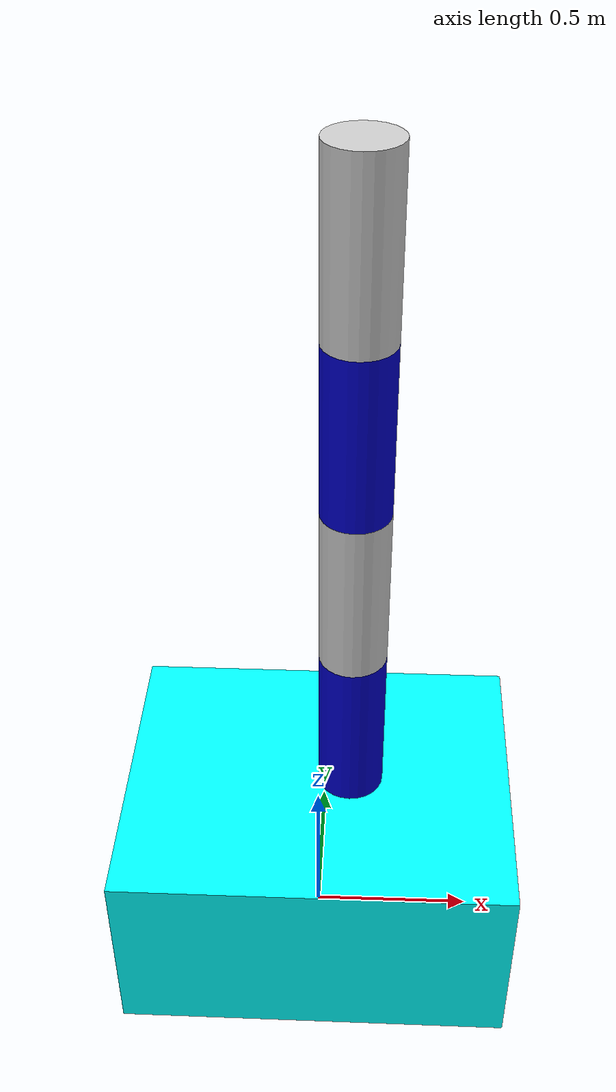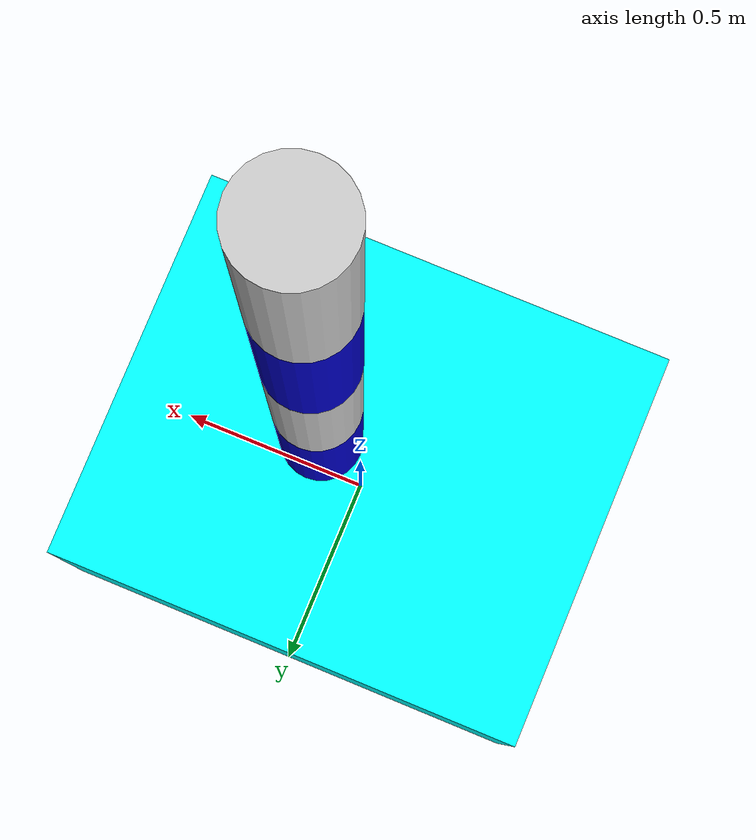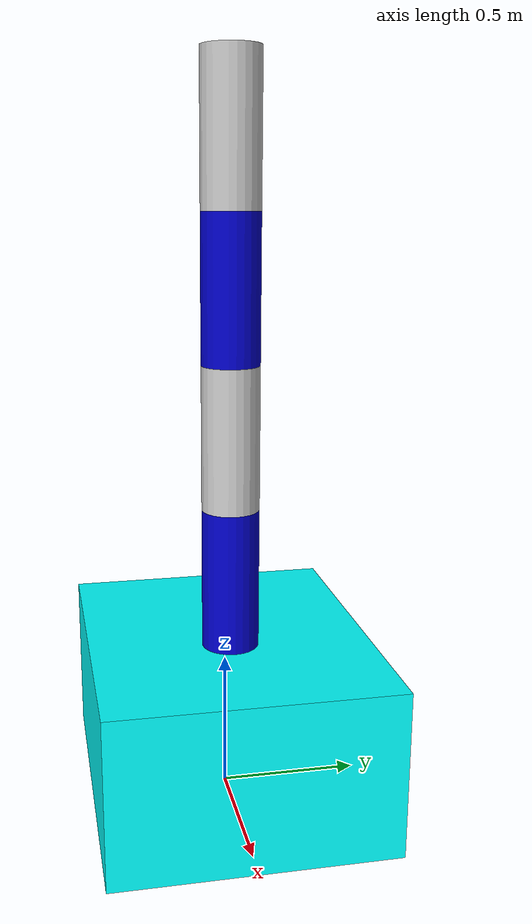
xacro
<?xml version="1.0"?>
<!--URDF MODEL 13 DoFs-->
<robot xmlns:xacro="http://ros.org/wiki/xacro" name="cell" >

  <xacro:include filename="$(find high_dof_description)/urdf/robot6dof_mobile.xacro" />

  <link name="world">
  </link>

  <xacro:imm base_frame="world" prefix="imm1_"/>

<xacro:include filename="$(find high_dof_description)/urdf/roscontrol.gazebo" />

</robot>

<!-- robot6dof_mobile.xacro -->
<!--URDF MODEL 13 DoFs-->
<robot xmlns:xacro="http://wiki.ros.org/xacro">
<xacro:macro name="imm" params="base_frame prefix">

<xacro:property name="arm_length" value="2" />
<xacro:property name="vertebrae"  value="2" />

<xacro:include filename="$(find high_dof_description)/urdf/antro3.xacro" />
<xacro:include filename="$(find high_dof_description)/urdf/mobile_base.xacro" />

<xacro:mobile_base mobile="true" parent="${base_frame}" child="${prefix}a_mount_flange" prefix="${prefix}"/>

<xacro:antro3 prefix="${prefix}a_" joint_limited="true" upper_arm_length="${0.5*arm_length/vertebrae}"  forearm_length="${0.5*arm_length/vertebrae}"/>
<joint name="${prefix}b_fixed" type="fixed">
  <origin xyz="0 0 0" rpy="0 0 0" />
  <parent link="${prefix}a_flange" />
  <child link="${prefix}b_mount_flange" />
</joint>
<xacro:antro3 prefix="${prefix}b_" joint_limited="true" upper_arm_length="${0.5*arm_length/vertebrae}"  forearm_length="${0.5*arm_length/vertebrae}"/>

<joint name="${prefix}last_flange_joint" type="fixed">
  <origin xyz="0 0 0" rpy="0 0 0" />
  <parent link="${prefix}b_flange" />
  <child link="${prefix}flange" />
</joint>
<link name="${prefix}flange"/>

</xacro:macro>

</robot>

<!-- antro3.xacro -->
<!--URDF MODEL only arms-->
<robot xmlns:xacro="http://wiki.ros.org/xacro">
  <xacro:macro name="antro3"
  params="joint_limited prefix upper_arm_length:=${0.35} upper_arm_radius:=${0.1} forearm_length:=${0.35} forearm_radius:=${0.1}">

    <link name="${prefix}mount_flange" >
<inertial>
  <mass value="0.01" />
  <origin xyz="0 0 0" rpy="0 0 0" />
  <inertia ixx="0.01" iyy="0.01" izz="0.01"
  ixy="0" ixz="0" iyz="0" />
</inertial>
</link>

<joint name="${prefix}joint_1" type="revolute">
  <origin xyz="0 0 0" rpy="${-pi*0.5} 0 0" />
  <parent link="${prefix}mount_flange" />
  <child link="${prefix}upper_arm_f1" />
  <dynamics damping="0.1" friction="0.1" />
  <xacro:unless value="${joint_limited}">
    <limit effort="3000000" velocity="1.0" lower="-3.1416"
    upper="3.1416" />
  </xacro:unless>
  <xacro:if value="${joint_limited}">
    <limit effort="3000000" velocity="10.0" lower="-1.5708"
    upper="1.5708" />
  </xacro:if>
  <axis xyz="0 0 1" />
  <dynamics damping="0.7"/>
</joint>

<link name="${prefix}upper_arm_f1" >
<inertial>
  <mass value="0.01" />
  <origin xyz="0 0 0" rpy="0 0 0" />
  <inertia ixx="0.01" iyy="0.01" izz="0.01"
  ixy="0" ixz="0" iyz="0" />
</inertial>
</link>

<joint name="${prefix}joint_2" type="revolute">
  <origin xyz="0 0 0" rpy="0 0 0" />
  <parent link="${prefix}upper_arm_f1" />
  <child link="${prefix}upper_arm" />
  <dynamics damping="0.1" friction="0.1" />
  <xacro:unless value="${joint_limited}">
    <limit effort="3000000" velocity="1.0" lower="-3.1416"
    upper="3.1416" />
  </xacro:unless>
  <xacro:if value="${joint_limited}">
    <limit effort="3000000" velocity="10.0" lower="-1.5708"
    upper="1.5708" />
  </xacro:if>
  <axis xyz="1 0 0" />
  <dynamics damping="0.7"/>
</joint>

<link name="${prefix}upper_arm">
  <inertial>
    <mass value="${6.5*upper_arm_length}" />
    <origin xyz="0 0 0" rpy="0 0 0" />
    <inertia ixx="0.019063" iyy="0.0013033" izz="0.019063"
    ixy="0" ixz="0" iyz="0" />
  </inertial>
  <visual>
    <origin xyz="0 ${-upper_arm_length/2} 0" rpy="1.5708 0 0" />
    <geometry>
      <cylinder length="${upper_arm_length}"
      radius="${upper_arm_radius}" />
    </geometry>
    <material name="blue">
      <color rgba="0.0 0.0 0.8 1.0" />
    </material>
  </visual>
  <collision>
    <origin xyz="0 ${-upper_arm_length/2} 0" rpy="1.5708 0 0" />
    <geometry>
      <cylinder length="${upper_arm_length}"
      radius="${upper_arm_radius}" />
    </geometry>
  </collision>
</link>

<joint name="${prefix}joint_3" type="revolute">
  <origin xyz="0 ${-upper_arm_length} 0" rpy="0 0 0" />
  <parent link="${prefix}upper_arm" />
  <child link="${prefix}forearm" />
  <dynamics damping="0.1" friction="0.1" />
  <xacro:unless value="${joint_limited}">
    <limit effort="3000000" velocity="1.0" lower="-3.1416"
    upper="3.1416" />
  </xacro:unless>
  <xacro:if value="${joint_limited}">
    <limit effort="3000000" velocity="10.0" lower="-1.5708"
    upper="1.5708" />
  </xacro:if>
  <axis xyz="1 0 0" />
  <dynamics damping="0.7"/>
</joint>

    <link name="${prefix}forearm">
      <inertial>
        <mass value="${5.2*forearm_length}" />
        <origin xyz="0 0 0" rpy="0 0 0" />
        <inertia ixx="0.0084595" iyy="0.00038616" izz="0.0084595"
        ixy="0" ixz="0" iyz="0" />
      </inertial>
      <visual>
        <origin xyz="0 ${-forearm_length/2} 0" rpy="1.5708 0 0" />
        <geometry>
          <cylinder length="${forearm_length}"
          radius="${forearm_radius}" />
        </geometry>
        <material name="grey">
          <color rgba="0.8 0.8 0.8 1.0" />
        </material>
      </visual>
      <collision>
        <origin xyz="0 ${-forearm_length/2} 0" rpy="1.5708 0 0" />
        <geometry>
          <cylinder length="${forearm_length}"
          radius="${forearm_radius}" />
        </geometry>
      </collision>
    </link>

    <joint name="${prefix}elbow_joint" type="fixed">
      <origin xyz="0 ${-forearm_length} 0" rpy="${pi*0.5} 0 0" />
      <parent link="${prefix}forearm" />
      <child link="${prefix}flange" />
    </joint>

<link name="${prefix}flange">
<inertial>
  <mass value="0.01" />
  <origin xyz="0 0 0" rpy="0 0 0" />
  <inertia ixx="0.01" iyy="0.01" izz="0.01"
  ixy="0" ixz="0" iyz="0" />
</inertial>
</link>

<transmission name="${prefix}tran_1">
  <type>transmission_interface/SimpleTransmission</type>
  <joint name="${prefix}joint_1">
    <hardwareInterface>hardware_interface/EffortJointInterface</hardwareInterface>
  </joint>
  <actuator name="${prefix}motor_1">
    <hardwareInterface>hardware_interface/EffortJointInterface</hardwareInterface>
    <mechanicalReduction>1</mechanicalReduction>
  </actuator>
</transmission>

<transmission name="${prefix}tran_2">
  <type>transmission_interface/SimpleTransmission</type>
  <joint name="${prefix}joint_2">
    <hardwareInterface>hardware_interface/EffortJointInterface</hardwareInterface>
  </joint>
  <actuator name="${prefix}motor_2">
    <hardwareInterface>hardware_interface/EffortJointInterface</hardwareInterface>
    <mechanicalReduction>1</mechanicalReduction>
  </actuator>
</transmission>

<transmission name="${prefix}tran_3">
  <type>transmission_interface/SimpleTransmission</type>
  <joint name="${prefix}joint_3">
    <hardwareInterface>hardware_interface/EffortJointInterface</hardwareInterface>
  </joint>
  <actuator name="${prefix}motor_3">
    <hardwareInterface>hardware_interface/EffortJointInterface</hardwareInterface>
    <mechanicalReduction>1</mechanicalReduction>
  </actuator>
</transmission>

<xacro:include filename="$(find high_dof_description)/urdf/antro3.gazebo" />

</xacro:macro>

</robot>

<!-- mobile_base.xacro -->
<!--URDF MODEL only arms-->
<robot xmlns:xacro="http://wiki.ros.org/xacro">
  <xacro:macro name="mobile_base"
  params="mobile parent child prefix:='' limit:='30.0'">

<xacro:unless value="${mobile}">
<joint name="${prefix}base_joint" type="fixed">
  <origin xyz="0 0 0.2" rpy="0 0 0" />
  <parent link="${parent}" />
  <child link="${child}" />
</joint>
</xacro:unless>

<xacro:if value="${mobile}">
<joint name="${prefix}mobile_joint_traslx" type="prismatic">
  <origin xyz="0 0 0" rpy="0 0 0"/>
  <parent link="${parent}"/>
  <child link="${prefix}base_f1"/>
  <dynamics damping="0.1" friction="0.1"/>
  <limit effort="3000" velocity="1.0" lower="-${limit}" upper="${limit}" />
  <axis xyz="1 0 0" />
</joint>
<link name="${prefix}base_f1" />

<joint name="${prefix}mobile_joint_trasly" type="prismatic">
  <origin xyz="0 0 0" rpy="0 0 0"/>
  <parent link="${prefix}base_f1"/>
  <child link="${prefix}base_f2"/>
  <dynamics damping="0.1" friction="0.1"/>
  <limit effort="3000" velocity="1.0" lower="-${limit}" upper="${limit}" />
  <axis xyz="0 1 0" />
</joint>
<link name="${prefix}base_f2" />

<joint name="${prefix}mobile_joint_rotz" type="revolute">
  <origin xyz="0 0 0" rpy="0 0 0"/>
  <parent link="${prefix}base_f2"/>
  <child link="${prefix}base_f3"/>
  <dynamics damping="0.1" friction="0.1"/>
  <limit effort="3000" velocity="2.0" lower="-${pi}" upper="${pi}" />
  <axis xyz="0 0 1" />
</joint>
<link name="${prefix}base_f3">
  <inertial>
    <mass value="30.0" />
    <origin xyz="0 0 0" rpy="0 0 0" />
    <inertia ixx="0.01" iyy="0.01" izz="0.5"
    ixy="0" ixz="0" iyz="0" />
  </inertial>

  <visual>
    <origin xyz="0 0 0.3" rpy="0 0 0" />
    <geometry>
      <box size="1.2 1 0.6" />
    </geometry>
    <material name="Cyan">
      <color rgba="0 1.0 1.0 1.0"/>
    </material>
  </visual>

  <collision>
    <origin xyz="0 0 0.3" rpy="0 0 0" />
    <geometry>
      <box size="1.2 1 0.6" />
    </geometry>
    <material name="Cyan">
      <color rgba="0 1.0 1.0 1.0"/>
    </material>
  </collision>
</link>

<joint name="${prefix}mobile_a_fixed" type="fixed">
  <origin xyz="0.1 0 0.6" rpy="0 0 0" />
  <parent link="${prefix}base_f3" />
  <child link="${child}" />
</joint>
</xacro:if>

</xacro:macro>

</robot>
